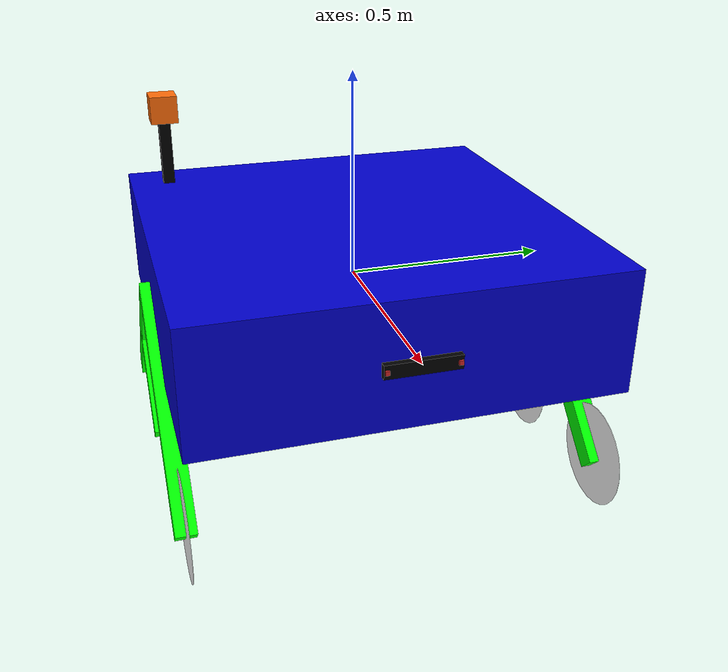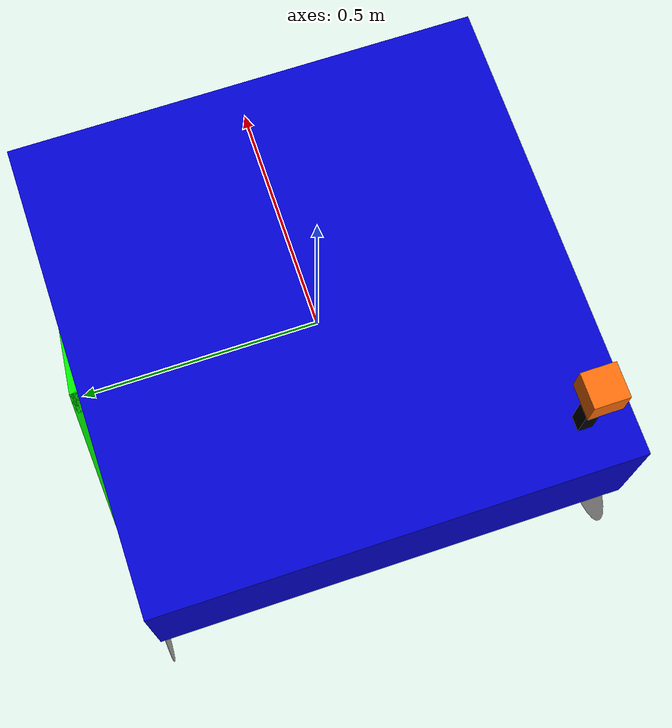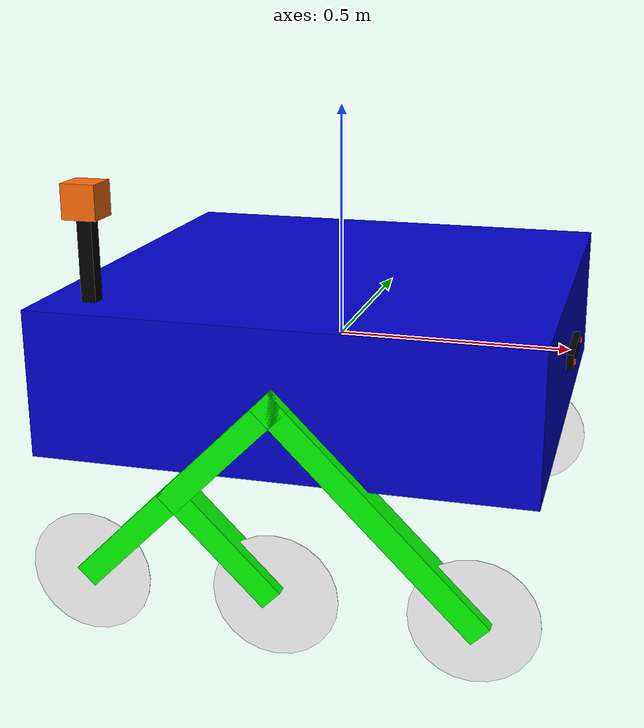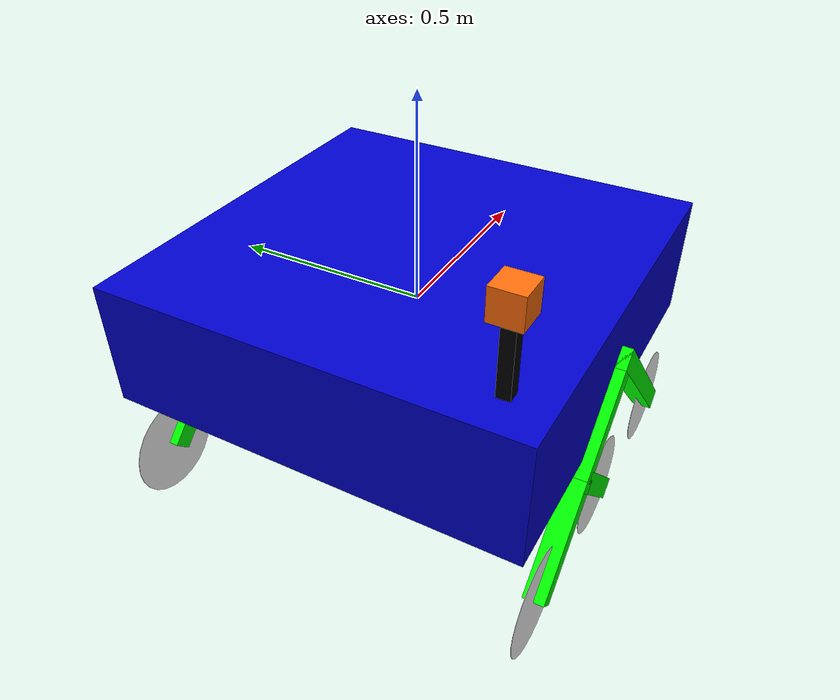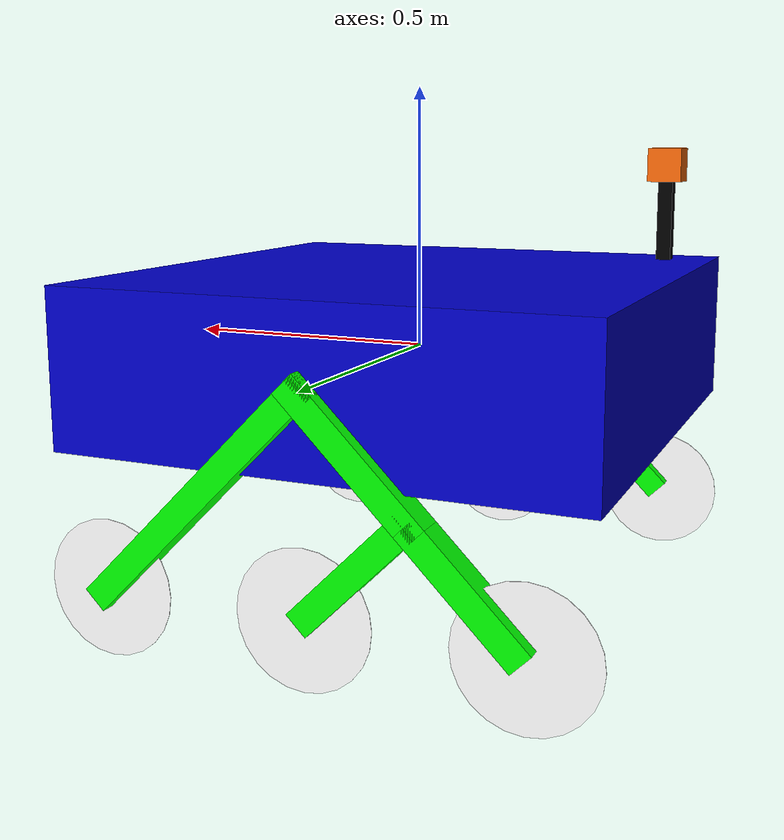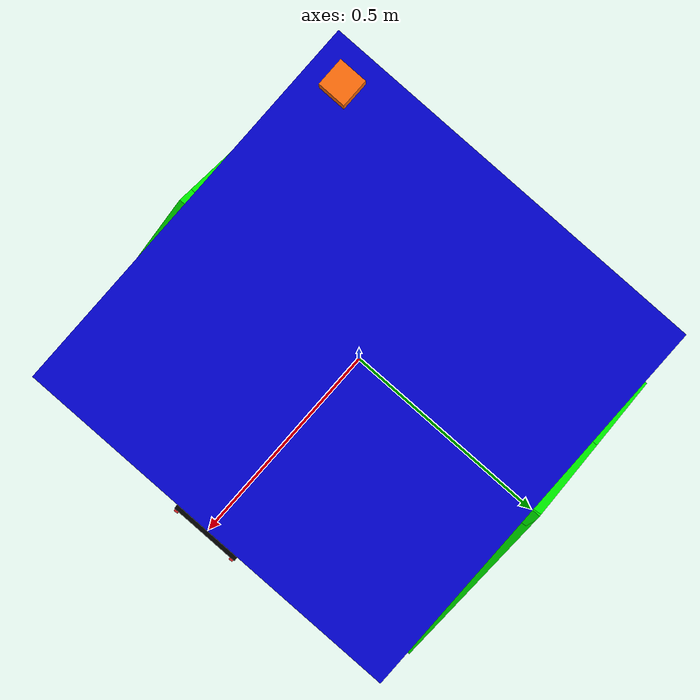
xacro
<?xml version="1.0"?>
<robot name="paul" xmlns:xacro="http://ros.org/wiki/xacro">

  <xacro:property name="bodywidth" value="1" />
  <xacro:property name="bodylen" value="1" />
  <xacro:property name="bodyhei" value="0.3" />
  <xacro:property name="wheeldiam" value="0.254" />
  <xacro:property name="wheellen" value="0.001" />
  <xacro:property name="leglen" value="0.6" />
  <xacro:property name="pi" value="3.1415" />
  <xacro:property name="rocker1_angle" value="0.78539816339" />
  <xacro:property name="rocker2_angle" value="0.78539816339" />
  <xacro:property name="rocker_len_long" value="0.54829" />
  <xacro:property name="rocker_len_short" value="0.273942" />
  <xacro:property name="rocker_bogie_len" value="0.27394" />
  <xacro:property name="rocker_thick1" value="0.05" />
  <xacro:property name="rocker_thick2" value="0.05" />

  <material name="blue">
    <color rgba="0 0 0.8 1"/>
  </material>
  <material name="black">
    <color rgba="0 0 0 1"/>
  </material>
  <material name="green">
    <color rgba="0 1 0 1"/>
  </material>
  <material name="white">
    <color rgba="1 1 1 1"/>
  </material>

  <material name="orange">
    <color rgba="${255/255} ${108/255} ${10/255} 1.0"/>
  </material>

  <xacro:macro name="default_inertial" params="mass">
    <inertial>
      <mass value="${mass}" />
      <inertia ixx="1.0" ixy="0.0" ixz="0.0" iyy="1.0" iyz="0.0" izz="1.0" />
    </inertial>
  </xacro:macro>

  <link name="base_link">
    <visual>
      <geometry>
        <box size="${bodylen} ${bodywidth} ${bodyhei}"/>
      </geometry>
      <material name="blue"/>
    </visual>
    <collision>
      <geometry>
        <box size="${bodylen} ${bodywidth} ${bodyhei}"/>
      </geometry>
    </collision>
     <xacro:default_inertial mass="46"/>
  </link>

<!-- Insert Suspensions and wheels -->
<xacro:include filename="$(find polyorbite_rover_control)/urdf/suspensions_wheels.urdf.xacro"/>

<!-- Insert Camera -->
 <xacro:include filename="$(find polyorbite_rover_control)/urdf/camera.urdf.xacro"/>

<!-- Insert GPS -->
 <xacro:include filename="$(find polyorbite_rover_control)/urdf/gps.urdf.xacro"/>

</robot>

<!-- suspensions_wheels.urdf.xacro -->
<robot name="paul" xmlns:xacro="http://ros.org/wiki/xacro">

  <xacro:macro name="wheel" params="prefix suffix reflect length angle parent">

    <link name="${prefix}_${suffix}_wheel">
      <visual>
        <origin xyz="0 0 0" rpy="${pi/2} 0 0" />
        <geometry>
          <cylinder radius="${wheeldiam/2}" length="${wheellen}"/>
        </geometry>
        <material name="white"/>
      </visual>
      <collision>
        <origin xyz="0 0 0" rpy="${pi/2} 0 0" />
        <geometry>
          <cylinder radius="${wheeldiam/2}" length="${wheellen}"/>
        </geometry>
       </collision>
      <xacro:default_inertial mass="1"/>
    </link>
    <joint name="${prefix}_${suffix}_wheel_joint" type="continuous">
      <axis xyz="0 1 0" rpy="0 0 0" />
      <parent link="${prefix}_${parent}"/>
      <child link="${prefix}_${suffix}_wheel"/>
      <origin xyz="${length*sin(angle)} 0 ${-length*cos(angle)}" rpy="0 0 0"/>
    </joint>

    <transmission name="${prefix}_${suffix}_wheel_trans">
      <type>transmission_interface/SimpleTransmission</type>
      <actuator name="${prefix}_${suffix}_wheel_motor">
        <mechanicalReduction>1</mechanicalReduction>
      </actuator>
      <joint name="${prefix}_${suffix}_wheel_joint">
        <hardwareInterface>hardware_interface/VelocityJointInterface</hardwareInterface>
      </joint>
    </transmission>

  </xacro:macro>

  <xacro:macro name="rocker_bogie" params="prefix reflect">
    <link name="${prefix}_rocker_bogie1">
      <visual>
        <geometry>
          <box size="${rocker_bogie_len} ${rocker_thick1} ${rocker_thick2}"/>
        </geometry>
        <origin xyz="${sin(rocker2_angle)*rocker_bogie_len/2} 0 ${-cos(rocker2_angle)*rocker_bogie_len/2}" rpy="0  ${rocker1_angle} 0"/>
        <material name="green"/>
      </visual>
      <collision>
        <geometry>
          <box size="${rocker_bogie_len} ${rocker_thick1} ${rocker_thick2}"/>
        </geometry>
        <origin xyz="${sin(rocker2_angle)*rocker_bogie_len/2} 0 ${-cos(rocker2_angle)*rocker_bogie_len/2}" rpy="0  ${rocker1_angle} 0"/>
        <material name="green"/>
      </collision>
      <xacro:default_inertial mass="1"/>
    </link>

    <joint name="rocker_to_${prefix}_rocker_bogie" type="fixed">
      <parent link="${prefix}_rocker2"/>
      <child link="${prefix}_rocker_bogie1"/>
      <origin xyz="${-rocker_len_short*cos(rocker1_angle)} 0 ${-rocker_len_short*sin(rocker1_angle)}" />
    </joint>

    <link name="${prefix}_rocker_bogie2">
       <visual>
        <geometry>
          <box size="${rocker_bogie_len} ${rocker_thick1} ${rocker_thick2}"/>
        </geometry>
        <origin xyz="${-sin(rocker2_angle)*rocker_bogie_len/2} 0 ${-cos(rocker2_angle)*rocker_bogie_len/2}" rpy="0  ${-rocker1_angle} 0"/>
        <material name="green"/>
      </visual>
      <collision>
        <geometry>
          <box size="${rocker_bogie_len} ${rocker_thick1} ${rocker_thick2}"/>
        </geometry>
        <origin xyz="${-sin(rocker2_angle)*rocker_bogie_len/2} 0 ${-cos(rocker2_angle)*rocker_bogie_len/2}" rpy="0  ${-rocker1_angle} 0"/>
        <material name="green"/>
      </collision>
      <xacro:default_inertial mass="0.5"/>
    </link>

    <joint name="${prefix}_rocker_bogie_joint" type="fixed">
      <parent link="${prefix}_rocker_bogie1"/>
      <child link="${prefix}_rocker_bogie2"/>
      <origin xyz="0 0 0" />
    </joint>

    <xacro:wheel prefix="${prefix}" suffix="back" reflect="-1" length="${rocker_bogie_len}" angle="${-rocker1_angle}" parent="rocker_bogie2"/>
    <xacro:wheel prefix="${prefix}" suffix="middle" reflect="-1" length="${rocker_bogie_len}" angle="${rocker1_angle}" parent="rocker_bogie1"/>
  </xacro:macro>

  <xacro:macro name="rocker" params="prefix reflect">
    <link name="${prefix}_rocker1">
      <visual>
        <geometry>
          <box size="${rocker_len_long+rocker_thick1} ${rocker_thick1} ${rocker_thick2}"/>
        </geometry>
        <origin xyz="${sin(rocker1_angle)*rocker_len_long/2} 0 -${cos(rocker1_angle)*rocker_len_long/2}" rpy="0  ${rocker1_angle} 0"/>
        <material name="green"/>
      </visual>
      <collision>
         <geometry>
          <box size="${rocker_len_long+rocker_thick1} ${rocker_thick1} ${rocker_thick2}"/>
        </geometry>
        <origin xyz="${sin(rocker1_angle)*rocker_len_long/2} 0 -${cos(rocker1_angle)*rocker_len_long/2}" rpy="0  ${rocker1_angle} 0"/>
      </collision>
      <xacro:default_inertial mass="0.5"/>
    </link>

    <joint name="base_to_${prefix}_rocker" type="fixed">
      <parent link="base_link"/>
      <child link="${prefix}_rocker1"/>
      <origin xyz="0 ${reflect*bodywidth/2} 0" />
      <axis xyz="0 1 0" rpy="0 0 0" />
      joint torsional spring plugin <axis>
        <limit>
          <lower>-0.1</lower>
          <upper>0.1</upper>
        </limit>
        <dynamics>
          <spring_stiffness>2500</spring_stiffness>
          <spring_reference>0.06</spring_reference>
          <damping>20.0</damping>
          <friction>0.75</friction>
        </dynamics>
        <use_parent_model_frame>0</use_parent_model_frame>
      </axis>
      <physics>
        <ode>
          <implicit_spring_damper>1</implicit_spring_damper>
          <cfm_damping>1</cfm_damping>
          <limit>
            <cfm>0</cfm>
            <erp>0.2</erp>
          </limit>
        </ode>
      </physics>
    </joint>

    <link name="${prefix}_rocker2">
       <visual>
        <geometry>
          <box size="${rocker_len_short+rocker_thick1} ${rocker_thick1} ${rocker_thick2}"/>
        </geometry>
        <origin xyz="${-sin(rocker1_angle)*rocker_len_short/2} 0 -${cos(rocker1_angle)*rocker_len_short/2}" rpy="0  ${-rocker1_angle} 0"/>
        <material name="green"/>
      </visual>
      <collision>
        <geometry>
          <box size="${rocker_len_short+rocker_thick1} ${rocker_thick1} ${rocker_thick2}"/>
        </geometry>
        <origin xyz="${-sin(rocker1_angle)*rocker_len_short/2} 0 -${cos(rocker1_angle)*rocker_len_short/2}" rpy="0  ${-rocker1_angle} 0"/>
      </collision>
      <xacro:default_inertial mass="0.5"/>
    </link>

    <joint name="${prefix}_rocker_joint" type="fixed">
      <parent link="${prefix}_rocker1"/>
      <child link="${prefix}_rocker2"/>
      <origin xyz="0 0 0" />
    </joint>
    <xacro:rocker_bogie prefix="${prefix}" reflect="${reflect}"/>

    <xacro:wheel prefix="${prefix}" suffix="front" reflect="1" length="${rocker_len_long}" angle="${rocker1_angle}" parent="rocker1"/>
  </xacro:macro>

  <xacro:rocker prefix="right" reflect="-1" />
  <xacro:rocker prefix="left" reflect="1" />

  <gazebo>
    <plugin name="gazebo_ros_control" filename="libgazebo_ros_control.so">
      <robotNamespace>/</robotNamespace>
    </plugin>
  </gazebo>
</robot>

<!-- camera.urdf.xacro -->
<robot name="paul" xmlns:xacro="http://ros.org/wiki/xacro">

  <joint name="camera_base_joint" type="fixed">
    <axis xyz="0 1 0" />
    <origin xyz="${bodylen/2} 0 0" rpy="0 0 0"/>
    <parent link="base_link"/>
    <child link="camera_base_link"/>
  </joint>

  <!-- Camera base-->
  <link name="camera_base_link">
    <collision>
      <origin xyz="0 0 0" rpy="0 0 0"/>
      <geometry>
    <box size="0.03 0.175 0.033"/>
      </geometry>
    </collision>

    <visual>
      <origin xyz="0 0 0" rpy="0 0 0"/>
      <geometry>
    <box size="0.03 0.175 0.033"/>
      </geometry>
      <material name="black"/>
    </visual>

    <inertial>
      <mass value="0.166" />
      <origin xyz="0 0 0" rpy="0 0 0"/>
      <inertia ixx="1e-6" ixy="0" ixz="0" iyy="1e-6" iyz="0" izz="1e-6" />
    </inertial>
  </link>

  <!-- Camera -->
<xacro:macro name="Zedcamera" params="prefix reflect">

  <joint name="camera_${prefix}_joint" type="fixed">
    <axis xyz="0 1 0" />
    <origin xyz="0.015 ${reflect*0.08} 0" rpy="0 0 0"/>
    <parent link="camera_base_link"/>
    <child link="camera_${prefix}_link"/>
  </joint>

  <link name="camera_${prefix}_link">
    <collision>
      <origin xyz="0 0 0" rpy="0 0 0"/>
      <geometry>
    <box size="0.01 0.01 0.01"/>
      </geometry>
    </collision>

    <visual>
      <origin xyz="0 0 0" rpy="0 0 0"/>
      <geometry>
    <box size="0.01 0.01 0.01"/>
      </geometry>
      <material name="red"/>
    </visual>

    <inertial>
      <mass value="0.166" />
      <origin xyz="0 0 0" rpy="0 0 0"/>
      <inertia ixx="1e-6" ixy="0" ixz="0" iyy="1e-6" iyz="0" izz="1e-6" />
    </inertial>
  </link>
 </xacro:macro>

  <xacro:Zedcamera prefix="right" reflect="-1" />
  <xacro:Zedcamera prefix="left" reflect="1" />

  <!-- camera -->
  <gazebo reference="camera_left_link">
    <sensor type="multicamera" name="stereo_camera">
      <update_rate>30.0</update_rate>
      <camera name="left">
        <image>
          <width>1280</width>
          <height>720</height>
          <format>R8G8B8</format>
          <hfov>110</hfov>
        </image>
        <clip>
          <near>0.02</near>
          <far>300</far>
        </clip>
        <noise>
          <type>gaussian</type>
          <mean>0.0</mean>
          <stddev>0.007</stddev>
        </noise>
      </camera>
      <camera name="right">
        <pose>0 -0.16 0 0 0 0</pose>
        <image>
          <width>1280</width>
          <height>720</height>
          <hfov>110</hfov>
          <format>R8G8B8</format>
        </image>
        <clip>
          <near>0.02</near>
          <far>300</far>
        </clip>
        <noise>
          <type>gaussian</type>
          <mean>0.0</mean>
          <stddev>0.007</stddev>
        </noise>
      </camera>
      <plugin name="stereo_camera_controller" filename="libgazebo_ros_multicamera.so">
        <alwaysOn>true</alwaysOn>
        <updateRate>0.0</updateRate>
        <cameraName>stereo_camera</cameraName>
        <imageTopicName>image_raw</imageTopicName>
        <cameraInfoTopicName>camera_info</cameraInfoTopicName>
        <frameName>left_cam_rotated</frameName>
        <rightFrameName>right_cam_rotated</rightFrameName>
        <hackBaseline>0.16</hackBaseline>
        <distortionK1>0.0</distortionK1>
        <distortionK2>0.0</distortionK2>
        <distortionK3>0.0</distortionK3>
        <distortionT1>0.0</distortionT1>
        <distortionT2>0.0</distortionT2>
      </plugin>
    </sensor>
    <material>Gazebo/Orange</material>
  </gazebo>
  <gazebo reference="camera_right_link">
    <material>Gazebo/Orange</material>
  </gazebo>

  <gazebo reference="camera_base_link">
    <material>Gazebo/Black</material>
  </gazebo>

  <gazebo>
    <plugin name="imu_plugin" filename="libgazebo_ros_imu.so">
      <alwaysOn>true</alwaysOn>
      <bodyName>camera_left_link</bodyName>
      <topicName>imu/data</topicName>
      <serviceName>imu_service</serviceName>
      <gaussianNoise>0.0</gaussianNoise>
      <updateRate>20.0</updateRate>
    </plugin>
  </gazebo>

</robot>

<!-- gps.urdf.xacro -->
<robot name="paul" xmlns:xacro="http://www.ros.org/wiki/xacro">

 <!-- GPS Tower -->
  <link name="GPS_tower">
    <collision>
      <origin xyz="0 0 0.20" rpy="0 0 0"/>
      <geometry>
        <box size="0.03 0.03 0.3"/>
      </geometry>
    </collision>
    <visual>
      <origin xyz="0 0 0.20" rpy="0 0 0"/>
      <geometry>
        <box size="0.03 0.03 0.3"/>
      </geometry>
      <material name="black"/>
    </visual>
	 <xacro:default_inertial mass="1"/>
  </link>

   <joint name="tower_to_base" type="fixed">
      <parent link="base_link"/>
      <child link="GPS_tower"/>
      <origin xyz="${-bodylen*4/10} ${-bodywidth*4/10} 0" />
   </joint>

 <!-- GPS Beacon -->
  <link name="GPS_Beacon">
    <collision>
      <origin xyz="0 0 0" rpy="0 0 0"/>
      <geometry>
        <box size="0.07 0.07 0.07"/>
      </geometry>
    </collision>
    <visual>
      <origin xyz="0 0 0" rpy="0 0 0"/>
      <geometry>
        <box size="0.07 0.07 0.07"/>
      </geometry>
      <material name="orange"/>
    </visual>
	 <xacro:default_inertial mass="1"/>
  </link>

   <joint name="beacon_to_tower" type="fixed">
      <parent link="GPS_tower"/>
      <child link="GPS_Beacon"/>
      <origin xyz="0 0 0.35" />
   </joint>

<gazebo>
	<plugin name="gazebo_ros_gps" filename="libhector_gazebo_ros_gps.so">
		<updateRate>4.0</updateRate>
		<bodyName>GPS_Beacon</bodyName>
		<frameId>GPS_Beacon</frameId>
		<topicName>/gps/fix</topicName>
		<velocityTopicName>/gps/fix_velocity</velocityTopicName>
		<referenceLatitude>-30.06022459407145675</referenceLatitude>
		<referenceLongitude>-51.173913575780311191</referenceLongitude>
		<referenceHeading>90</referenceHeading>
		<referenceAltitude>10</referenceAltitude>
		<offset>0 0 0</offset>
		<drift>0.001 0.001 0.001</drift>
		<gaussianNoise>0.05 0.05 0.05</gaussianNoise>
		<velocityDrift>0.001 0.001 0.001</velocityDrift>
		<velocityGaussianNoise>0.5 0.5 0.5</velocityGaussianNoise>
	</plugin>
	<!-- Ground truth plugin -->
	<plugin name="p3d_base_controller" filename="libgazebo_ros_p3d.so">
      <alwaysOn>true</alwaysOn>
      <updateRate>200.0</updateRate>
      <bodyName>base_link</bodyName>
      <topicName>ground_truth/state</topicName>
      <gaussianNoise>0.0</gaussianNoise>
      <frameName>map</frameName>
      <xyzOffsets>0 0 0</xyzOffsets>
      <rpyOffsets>0 0 0</rpyOffsets>
    </plugin>
</gazebo>

 <gazebo reference="GPS_Beacon">
    <material>Gazebo/Orange</material>
  </gazebo>

</robot>
